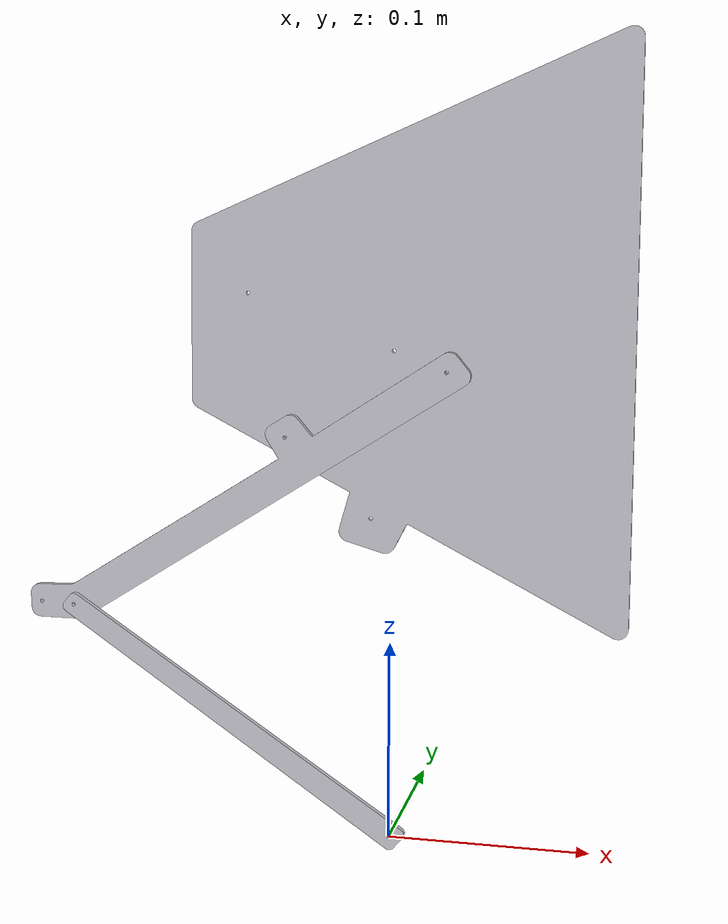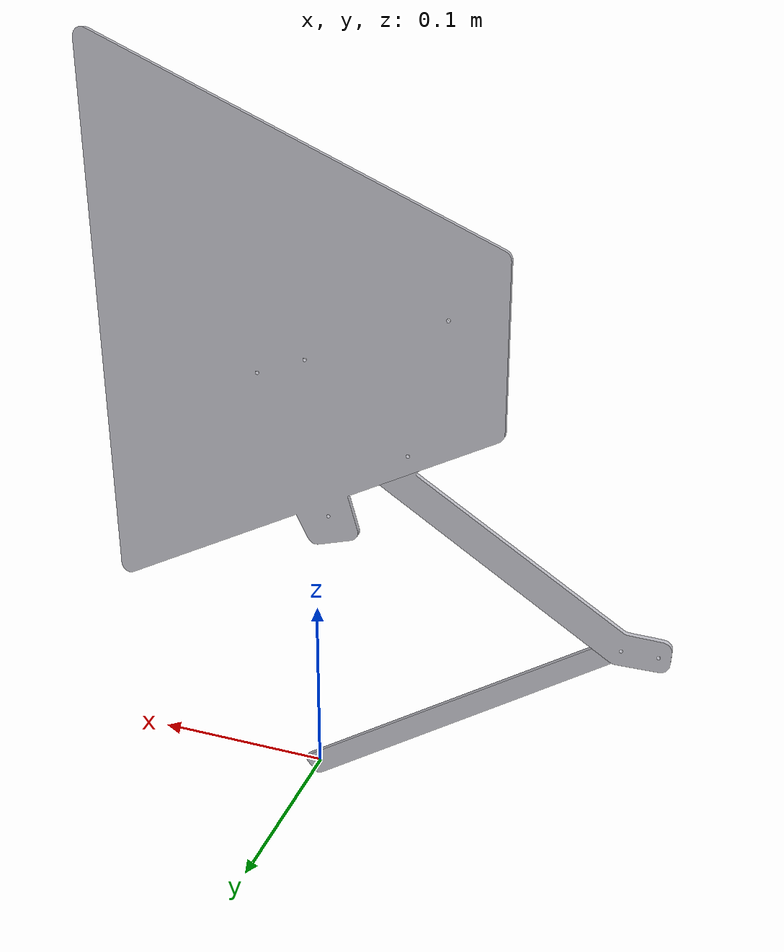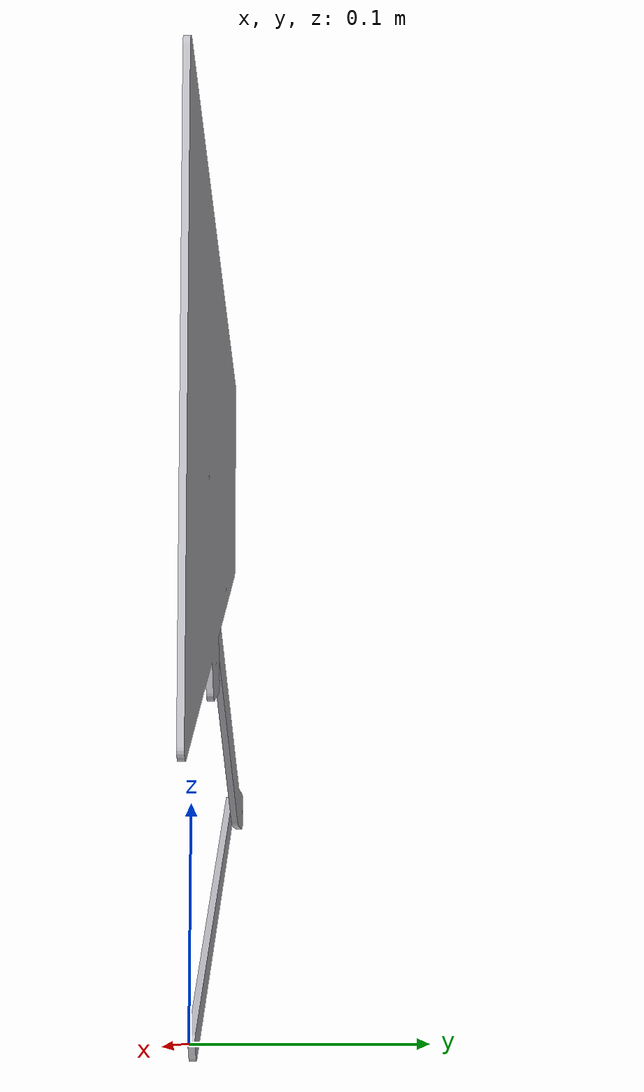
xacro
<?xml version="1.0" ?>
<robot name="(Unsaved)" xmlns:xacro="http://www.ros.org/wiki/xacro">

<xacro:include filename="$(find (Unsaved)_description)/urdf/materials.xacro" />
<xacro:include filename="$(find (Unsaved)_description)/urdf/(Unsaved).trans" />
<xacro:include filename="$(find (Unsaved)_description)/urdf/(Unsaved).gazebo" />
<link name="base_link">
  <inertial>
    <origin xyz="-0.047792669722281175 -4.8350907511477854e-05 0.021550430453036215" rpy="0 0 0"/>
    <mass value="0.9341430764694033"/>
    <inertia ixx="0.000726" iyy="0.003429" izz="0.004125" ixy="3e-06" iyz="0.0" ixz="-5e-05"/>
  </inertial>
  <visual>
    <origin xyz="0 0 0" rpy="0 0 0"/>
    <geometry>
      <mesh filename="package://(Unsaved)_description/meshes/base_link.stl" scale="0.001 0.001 0.001"/>
    </geometry>
    <material name="silver"/>
  </visual>
  <collision>
    <origin xyz="0 0 0" rpy="0 0 0"/>
    <geometry>
      <mesh filename="package://(Unsaved)_description/meshes/base_link.stl" scale="0.001 0.001 0.001"/>
    </geometry>
  </collision>
</link>

<link name="Component3_1">
  <inertial>
    <origin xyz="4.0915161916843523e-07 -0.0024999999999987463 4.1347129118088355e-07" rpy="0 0 0"/>
    <mass value="0.019266798695843648"/>
    <inertia ixx="1e-06" iyy="2e-06" izz="1e-06" ixy="0.0" iyz="0.0" ixz="0.0"/>
  </inertial>
  <visual>
    <origin xyz="0.144622 0.055 -0.013284" rpy="0 0 0"/>
    <geometry>
      <mesh filename="package://(Unsaved)_description/meshes/Component3_1.stl" scale="0.001 0.001 0.001"/>
    </geometry>
    <material name="silver"/>
  </visual>
  <collision>
    <origin xyz="0.144622 0.055 -0.013284" rpy="0 0 0"/>
    <geometry>
      <mesh filename="package://(Unsaved)_description/meshes/Component3_1.stl" scale="0.001 0.001 0.001"/>
    </geometry>
  </collision>
</link>

<link name="Component2_1">
  <inertial>
    <origin xyz="-4.40400612394809e-07 0.002500000000001411 -2.1086181734887577e-07" rpy="0 0 0"/>
    <mass value="0.019266798695843648"/>
    <inertia ixx="1e-06" iyy="2e-06" izz="1e-06" ixy="0.0" iyz="0.0" ixz="0.0"/>
  </inertial>
  <visual>
    <origin xyz="0.145004 -0.055 -0.013334" rpy="0 0 0"/>
    <geometry>
      <mesh filename="package://(Unsaved)_description/meshes/Component2_1.stl" scale="0.001 0.001 0.001"/>
    </geometry>
    <material name="silver"/>
  </visual>
  <collision>
    <origin xyz="0.145004 -0.055 -0.013334" rpy="0 0 0"/>
    <geometry>
      <mesh filename="package://(Unsaved)_description/meshes/Component2_1.stl" scale="0.001 0.001 0.001"/>
    </geometry>
  </collision>
</link>

<joint name="Rev1" type="continuous">
  <origin xyz="-0.144622 -0.055 0.013284" rpy="0 0 0"/>
  <parent link="base_link"/>
  <child link="Component3_1"/>
  <axis xyz="0.0 1.0 0.0"/>
</joint>

<joint name="Rev2" type="continuous">
  <origin xyz="-0.145004 0.055 0.013334" rpy="0 0 0"/>
  <parent link="base_link"/>
  <child link="Component2_1"/>
  <axis xyz="0.0 1.0 0.0"/>
</joint>

</robot>

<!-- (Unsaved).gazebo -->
<robot name="(Unsaved)" xmlns:xacro="http://www.ros.org/wiki/xacro" >

<xacro:property name="body_color" value="Gazebo/Silver" />

<gazebo>
  <plugin name="control" filename="libgazebo_ros_control.so"/>
</gazebo>
<gazebo reference="base_link">
  <material>${body_color}</material>
  <mu1>3500</mu1>
  <mu2>3500</mu2>
  <selfCollide>true</selfCollide>
  <gravity>true</gravity>
</gazebo>

<gazebo reference="Component3_1">
  <material>${body_color}</material>
  <mu1>3500</mu1>
  <mu2>3500</mu2>
  <selfCollide>true</selfCollide>
</gazebo>

<gazebo reference="Component2_1">
  <material>${body_color}</material>
  <mu1>3500</mu1>
  <mu2>3500</mu2>
  <selfCollide>true</selfCollide>
</gazebo>

</robot>
